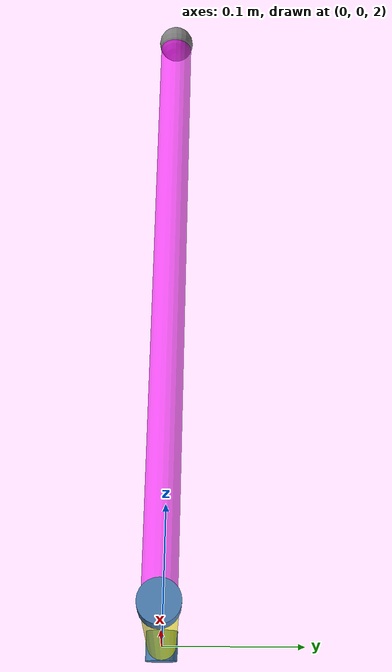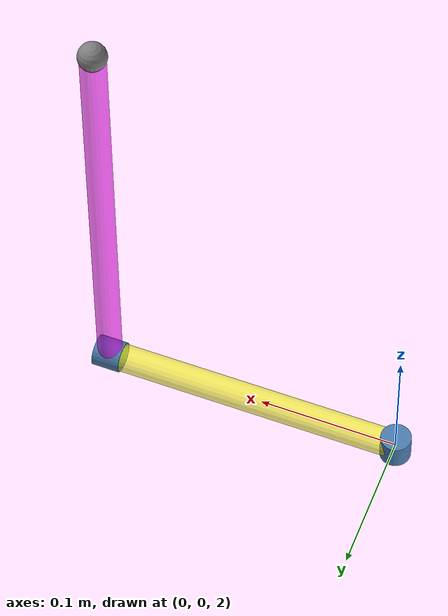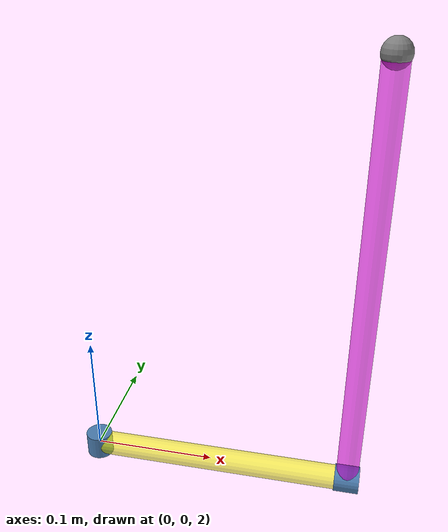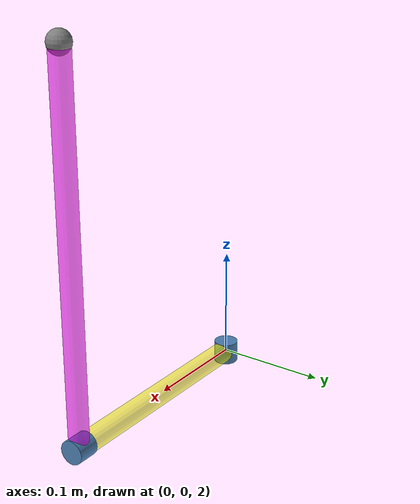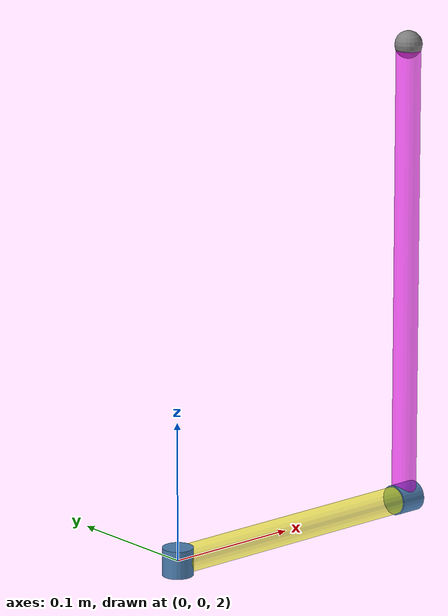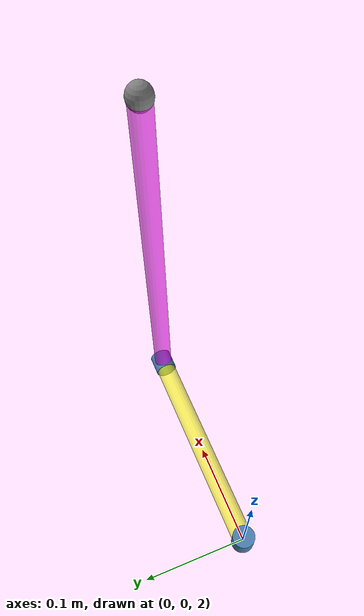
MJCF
<mujoco model="acrobot">
  <include file="./common/visual.xml"/>
  <include file="./common/skybox.xml"/>
  <include file="./common/materials.xml"/>

  <default>
    <geom type="capsule" mass="1.0"/>
  </default>

  <option timestep="0.01" integrator="RK4">
    <flag constraint="enable" energy="enable"/>
  </option>

  <worldbody>
    <light name="light" pos="0 0 6"/>
    <geom name="floor" size="3 3 .2" type="plane" material="grid"/>
    <site name="target" type="sphere" pos="0 0 4" size="0.2" material="target" group="3"/>
    <camera name="fixed" pos="0 -1 2" zaxis="0 -1 0"/>
    <camera name="lookat" mode="targetbodycom" target="upper_arm" pos="0 -1 2"/>
    <!-- arm -->
    <body name="upper_arm" pos="0 0 2">
        <inertial pos="0.1077 0 0" diaginertia="0.00099829 0.00099829 0.00099829" mass="0.257"/>
        <joint name="shoulder" type="hinge" axis="0 0 1" damping="0.02" frictionloss="0.068"/>
        <geom name="upper_arm_decoration" material="decoration" type="cylinder" fromto="0 0 -.01 0 0 .01" size="0.011" mass="0.0"/>
        <geom name="upper_arm" fromto="0 0 0 0.2154 0 0" size="0.01" material="self" rgba="1 1 0 0.6" mass=".0"/>
        <!-- pendulum -->
        <body name="lower_arm" pos="0.2154 0 0">
            <inertial pos="0 0 0.1682" diaginertia="0.0012 0.0012 0.0012" mass="0.127"/>
            <joint name="elbow" type="hinge" axis="1 0 0" damping="0.00245" frictionloss="0.02"/>
            <geom name="lower_arm" fromto="0 0 0 0 0 0.3365" size="0.009" material="self" rgba="1 0 1 0.6" mass=".0"/>
            <site name="tip" pos="0 0 0.3365" size="0.01"/>
            <geom name="lower_arm_decoration" material="decoration" type="cylinder" fromto="-.01 0 0 .01 0 0" size="0.011" mass=".0"/>
        </body>
    </body>
  </worldbody>

  <actuator>
    <motor name="shoulder" joint="shoulder" gear="1" ctrllimited="true" ctrlrange="-1. 1."/>
  </actuator>
</mujoco>

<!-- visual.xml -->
<!-- https://github.com/google-deepmind/dm_control/blob/33cea512329bdea46db177dd6c2f8ccb7b68ae73/dm_control/suite/common/visual.xml -->

<mujoco>
  <visual>
    <headlight ambient=".4 .4 .4" diffuse=".8 .8 .8" specular="0.1 0.1 0.1"/>
    <map znear=".01"/>
    <quality shadowsize="2048"/>
  </visual>
</mujoco>

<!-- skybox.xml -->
<!-- https://github.com/google-deepmind/dm_control/blob/33cea512329bdea46db177dd6c2f8ccb7b68ae73/dm_control/suite/common/skybox.xml -->

<mujoco>
  <asset>
      <texture name="skybox" type="skybox" builtin="gradient" rgb1=".4 .6 .8" rgb2="0 0 0"
               width="800" height="800" mark="random" markrgb="1 1 1"/>
  </asset>
</mujoco>

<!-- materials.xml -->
<!-- https://github.com/google-deepmind/dm_control/blob/33cea512329bdea46db177dd6c2f8ccb7b68ae73/dm_control/suite/common/materials.xml -->

<!--
Common textures, colors and materials to be used throughout this suite. Some
materials such as xxx_highlight are activated on occurence of certain events,
for example receiving a positive reward.
-->
<mujoco>
  <asset>
    <texture name="grid" type="2d" builtin="checker" rgb1=".1 .2 .3" rgb2=".2 .3 .4" width="300" height="300" mark="edge" markrgb=".2 .3 .4"/>
    <material name="grid" texture="grid" texrepeat="1 1" texuniform="true" reflectance=".2"/>
    <material name="self" rgba=".7 .5 .3 1"/>
    <material name="self_default" rgba=".7 .5 .3 1"/>
    <material name="self_highlight" rgba="0 .5 .3 1"/>
    <material name="effector" rgba=".7 .4 .2 1"/>
    <material name="effector_default" rgba=".7 .4 .2 1"/>
    <material name="effector_highlight" rgba="0 .5 .3 1"/>
    <material name="decoration" rgba=".3 .5 .7 1"/>
    <material name="eye" rgba="0 .2 1 1"/>
    <material name="target" rgba=".6 .3 .3 1"/>
    <material name="target_default" rgba=".6 .3 .3 1"/>
    <material name="target_highlight" rgba=".6 .3 .3 .4"/>
    <material name="site" rgba=".5 .5 .5 .3"/>
  </asset>
</mujoco>
